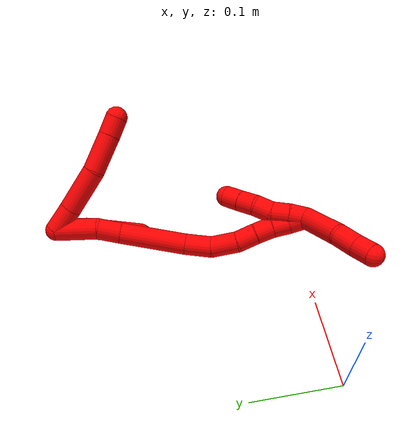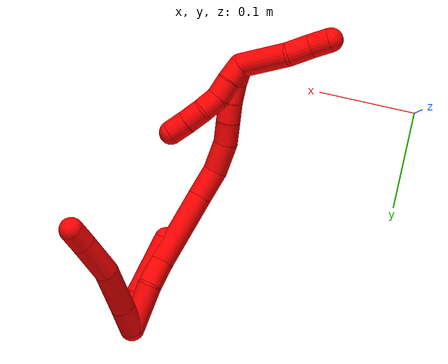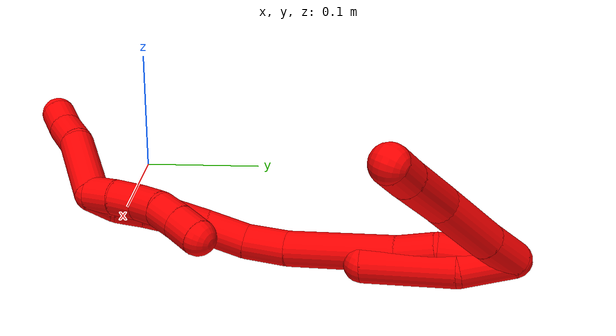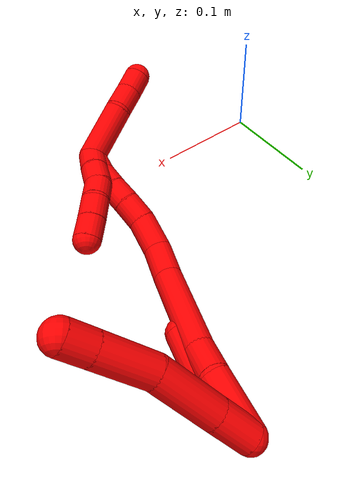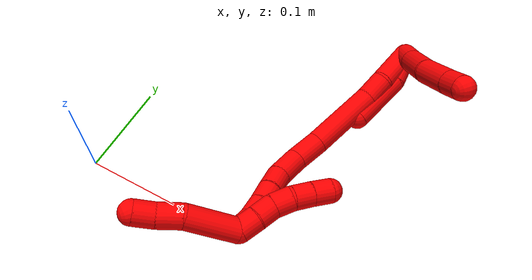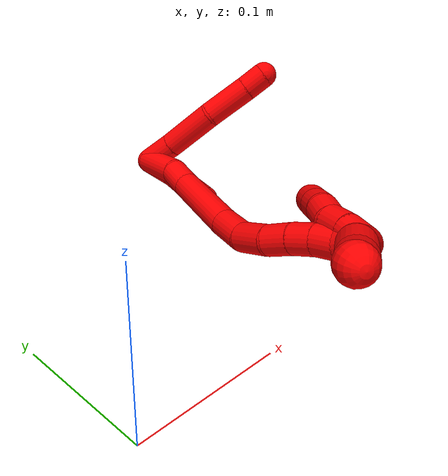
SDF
<sdf version="1.7">
 <world name="default">
  <model name="photoneo_s_sensor">
   <static>1</static>
   <pose>0 0 2 1.57079 1.57079 3.14159</pose>
   <link name="link">
    <inertial><mass>0.1</mass></inertial>
    <sensor name="sensor" type="depth">
     <update_rate>30</update_rate>
     <camera>
      <horizontal_fov>1.22</horizontal_fov>
      <image><width>1920</width><height>1200</height><format>B8G8R8</format></image>
      <clip><near>0.1</near><far>4</far></clip>
      <depth_camera><output>points</output></depth_camera>
     </camera>
     <plugin name="camera_plugin" filename="libgazebo_ros_depth_camera.so">
      <baseline>0.2</baseline>
      <alwaysOn>1</alwaysOn>
      <updateRate>0.0</updateRate>
      <cameraName>camera_ir</cameraName>
      <imageTopicName>/camera/color/image_raw</imageTopicName>
      <cameraInfoTopicName>/camera/color/camera_info</cameraInfoTopicName>
      <depthImageTopicName>/camera/depth/image_raw</depthImageTopicName>
      <depthImageCameraInfoTopicName>/camera/depth/camera_info</depthImageCameraInfoTopicName>
      <pointCloudTopicName>/camera/depth/points</pointCloudTopicName>
      <frameName>fr_optical</frameName>
      <pointCloudCutoff>0.1</pointCloudCutoff>
      <pointCloudCutoffMax>2.0</pointCloudCutoffMax>
      <distortionK1>0</distortionK1>
      <distortionK2>0</distortionK2>
      <distortionK3>0</distortionK3>
      <distortionT1>0</distortionT1>
      <distortionT2>0</distortionT2>
      <CxPrime>0</CxPrime>
      <Cx>0</Cx>
      <Cy>0</Cy>
      <focalLength>0</focalLength>
      <hackBaseline>0</hackBaseline>
     </plugin>
    </sensor>
   </link>
  </model>
  <model name="bin">
   <static>1</static>
   <link name="bottom">
    <collision name="collision-bottom">
     <pose>0 0 -0.01 0 -0 0</pose>
     <geometry><box><size>0.8 0.6 0.02</size></box></geometry>
     <surface>
      <friction><ode><mu>100</mu><mu2>100</mu2></ode></friction>
      <contact><collide_bitmask>65535</collide_bitmask></contact>
     </surface>
    </collision>
   </link>
   <link name="west_wall">
    <collision name="collision-west_wall">
     <pose>-0.41 0 0.1 0 -0 0</pose>
     <geometry><box><size>0.02 0.6 0.2</size></box></geometry>
     <surface>
      <friction><ode><mu>100</mu><mu2>100</mu2></ode></friction>
      <contact><collide_bitmask>65535</collide_bitmask></contact>
     </surface>
    </collision>
   </link>
   <link name="east_wall">
    <collision name="collision-east_wall">
     <pose>0.41 0 0.1 0 -0 0</pose>
     <geometry><box><size>0.02 0.6 0.2</size></box></geometry>
     <surface>
      <friction><ode><mu>100</mu><mu2>100</mu2></ode></friction>
      <contact><collide_bitmask>65535</collide_bitmask></contact>
     </surface>
    </collision>
   </link>
   <link name="south_wall">
    <collision name="collision-south_wall">
     <pose>0 -0.31 0.1 0 -0 0</pose>
     <geometry><box><size>0.8 0.02 0.2</size></box></geometry>
     <surface>
      <friction><ode><mu>100</mu><mu2>100</mu2></ode></friction>
      <contact><collide_bitmask>65535</collide_bitmask></contact>
     </surface>
    </collision>
   </link>
   <link name="north_wall">
    <collision name="collision-north_wall">
     <pose>0 0.31 0.1 0 -0 0</pose>
     <geometry><box><size>0.8 0.02 0.2</size></box></geometry>
     <surface>
      <friction><ode><mu>100</mu><mu2>100</mu2></ode></friction>
      <contact><collide_bitmask>65535</collide_bitmask></contact>
     </surface>
    </collision>
   </link>
  </model>
  <model name="2">
   <static>0</static>
   <link name="2">
    <collision name="collision-cylinder-e_1_2_8">
     <pose>-0.014411 -0.000544 -0.006386 3.05669 -1.15233 -3.01101</pose>
     <geometry><cylinder><radius>0.0125</radius><length>0.031545</length></cylinder></geometry>
     <surface>
      <friction><ode><mu>1.16</mu><mu2>1.16</mu2><slip1>0</slip1><slip2>0</slip2></ode></friction>
      <contact><ode><kp>1e+06</kp><kd>1</kd><max_vel>0</max_vel><min_depth>0.001</min_depth></ode></contact>
     </surface>
    </collision>
    <visual name="visual-cylinder-e_1_2_8">
     <pose>-0.014411 -0.000544 -0.006386 3.05669 -1.15233 -3.01101</pose>
     <geometry><cylinder><radius>0.0125</radius><length>0.031545</length></cylinder></geometry>
     <material><ambient>1 0 0 1</ambient></material>
    </visual>
    <collision name="collision-cylinder-e_2_8_9">
     <pose>-0.052852 -0.000941 -0.023039 -3.12734 -1.16698 3.12</pose>
     <geometry><cylinder><radius>0.0125</radius><length>0.052262</length></cylinder></geometry>
     <surface>
      <friction><ode><mu>1.16</mu><mu2>1.16</mu2><slip1>0</slip1><slip2>0</slip2></ode></friction>
      <contact><ode><kp>1e+06</kp><kd>1</kd><max_vel>0</max_vel><min_depth>0.001</min_depth></ode></contact>
     </surface>
    </collision>
    <visual name="visual-cylinder-e_2_8_9">
     <pose>-0.052852 -0.000941 -0.023039 -3.12734 -1.16698 3.12</pose>
     <geometry><cylinder><radius>0.0125</radius><length>0.052262</length></cylinder></geometry>
     <material><ambient>1 0 0 1</ambient></material>
    </visual>
    <collision name="collision-cylinder-e_3_9_10">
     <pose>-0.098565 -0.00237 -0.037583 2.78859 -1.36362 -2.70899</pose>
     <geometry><cylinder><radius>0.0125</radius><length>0.044315</length></cylinder></geometry>
     <surface>
      <friction><ode><mu>1.16</mu><mu2>1.16</mu2><slip1>0</slip1><slip2>0</slip2></ode></friction>
      <contact><ode><kp>1e+06</kp><kd>1</kd><max_vel>0</max_vel><min_depth>0.001</min_depth></ode></contact>
     </surface>
    </collision>
    <visual name="visual-cylinder-e_3_9_10">
     <pose>-0.098565 -0.00237 -0.037583 2.78859 -1.36362 -2.70899</pose>
     <geometry><cylinder><radius>0.0125</radius><length>0.044315</length></cylinder></geometry>
     <material><ambient>1 0 0 1</ambient></material>
    </visual>
    <collision name="collision-cylinder-e_4_10_6">
     <pose>-0.131007 -0.004439 -0.043776 2.88958 -1.38884 -2.83969</pose>
     <geometry><cylinder><radius>0.0125</radius><length>0.021878</length></cylinder></geometry>
     <surface>
      <friction><ode><mu>1.16</mu><mu2>1.16</mu2><slip1>0</slip1><slip2>0</slip2></ode></friction>
      <contact><ode><kp>1e+06</kp><kd>1</kd><max_vel>0</max_vel><min_depth>0.001</min_depth></ode></contact>
     </surface>
    </collision>
    <visual name="visual-cylinder-e_4_10_6">
     <pose>-0.131007 -0.004439 -0.043776 2.88958 -1.38884 -2.83969</pose>
     <geometry><cylinder><radius>0.0125</radius><length>0.021878</length></cylinder></geometry>
     <material><ambient>1 0 0 1</ambient></material>
    </visual>
    <collision name="collision-cylinder-e_1_2_11">
     <pose>-0.004642 -0.011344 -0.013505 2.44295 -0.257365 -0.682663</pose>
     <geometry><cylinder><radius>0.0125</radius><length>0.036477</length></cylinder></geometry>
     <surface>
      <friction><ode><mu>1.16</mu><mu2>1.16</mu2><slip1>0</slip1><slip2>0</slip2></ode></friction>
      <contact><ode><kp>1e+06</kp><kd>1</kd><max_vel>0</max_vel><min_depth>0.001</min_depth></ode></contact>
     </surface>
    </collision>
    <visual name="visual-cylinder-e_1_2_11">
     <pose>-0.004642 -0.011344 -0.013505 2.44295 -0.257365 -0.682663</pose>
     <geometry><cylinder><radius>0.0125</radius><length>0.036477</length></cylinder></geometry>
     <material><ambient>1 0 0 1</ambient></material>
    </visual>
    <collision name="collision-cylinder-e_2_11_5">
     <pose>-0.012799 -0.034969 -0.056091 2.74199 -0.110886 -0.535001</pose>
     <geometry><cylinder><radius>0.0125</radius><length>0.063523</length></cylinder></geometry>
     <surface>
      <friction><ode><mu>1.16</mu><mu2>1.16</mu2><slip1>0</slip1><slip2>0</slip2></ode></friction>
      <contact><ode><kp>1e+06</kp><kd>1</kd><max_vel>0</max_vel><min_depth>0.001</min_depth></ode></contact>
     </surface>
    </collision>
    <visual name="visual-cylinder-e_2_11_5">
     <pose>-0.012799 -0.034969 -0.056091 2.74199 -0.110886 -0.535001</pose>
     <geometry><cylinder><radius>0.0125</radius><length>0.063523</length></cylinder></geometry>
     <material><ambient>1 0 0 1</ambient></material>
    </visual>
    <collision name="collision-cylinder-e_1_2_12">
     <pose>-0.006137 -0.008557 -0.022023 2.77101 -0.254134 -1.19649</pose>
     <geometry><cylinder><radius>0.0125</radius><length>0.048823</length></cylinder></geometry>
     <surface>
      <friction><ode><mu>1.16</mu><mu2>1.16</mu2><slip1>0</slip1><slip2>0</slip2></ode></friction>
      <contact><ode><kp>1e+06</kp><kd>1</kd><max_vel>0</max_vel><min_depth>0.001</min_depth></ode></contact>
     </surface>
    </collision>
    <visual name="visual-cylinder-e_1_2_12">
     <pose>-0.006137 -0.008557 -0.022023 2.77101 -0.254134 -1.19649</pose>
     <geometry><cylinder><radius>0.0125</radius><length>0.048823</length></cylinder></geometry>
     <material><ambient>1 0 0 1</ambient></material>
    </visual>
    <collision name="collision-cylinder-e_2_12_13">
     <pose>-0.012532 -0.023687 -0.05581 2.63204 -0.019088 -0.073262</pose>
     <geometry><cylinder><radius>0.0125</radius><length>0.026956</length></cylinder></geometry>
     <surface>
      <friction><ode><mu>1.16</mu><mu2>1.16</mu2><slip1>0</slip1><slip2>0</slip2></ode></friction>
      <contact><ode><kp>1e+06</kp><kd>1</kd><max_vel>0</max_vel><min_depth>0.001</min_depth></ode></contact>
     </surface>
    </collision>
    <visual name="visual-cylinder-e_2_12_13">
     <pose>-0.012532 -0.023687 -0.05581 2.63204 -0.019088 -0.073262</pose>
     <geometry><cylinder><radius>0.0125</radius><length>0.026956</length></cylinder></geometry>
     <material><ambient>1 0 0 1</ambient></material>
    </visual>
    <collision name="collision-cylinder-e_3_13_14">
     <pose>-0.01464 -0.044846 -0.103419 2.75515 -0.047795 -0.24311</pose>
     <geometry><cylinder><radius>0.0125</radius><length>0.077487</length></cylinder></geometry>
     <surface>
      <friction><ode><mu>1.16</mu><mu2>1.16</mu2><slip1>0</slip1><slip2>0</slip2></ode></friction>
      <contact><ode><kp>1e+06</kp><kd>1</kd><max_vel>0</max_vel><min_depth>0.001</min_depth></ode></contact>
     </surface>
    </collision>
    <visual name="visual-cylinder-e_3_13_14">
     <pose>-0.01464 -0.044846 -0.103419 2.75515 -0.047795 -0.24311</pose>
     <geometry><cylinder><radius>0.0125</radius><length>0.077487</length></cylinder></geometry>
     <material><ambient>1 0 0 1</ambient></material>
    </visual>
    <collision name="collision-cylinder-e_4_14_15">
     <pose>-0.018309 -0.06381 -0.154306 2.85834 -0.115544 -0.77071</pose>
     <geometry><cylinder><radius>0.0125</radius><length>0.031543</length></cylinder></geometry>
     <surface>
      <friction><ode><mu>1.16</mu><mu2>1.16</mu2><slip1>0</slip1><slip2>0</slip2></ode></friction>
      <contact><ode><kp>1e+06</kp><kd>1</kd><max_vel>0</max_vel><min_depth>0.001</min_depth></ode></contact>
     </surface>
    </collision>
    <visual name="visual-cylinder-e_4_14_15">
     <pose>-0.018309 -0.06381 -0.154306 2.85834 -0.115544 -0.77071</pose>
     <geometry><cylinder><radius>0.0125</radius><length>0.031543</length></cylinder></geometry>
     <material><ambient>1 0 0 1</ambient></material>
    </visual>
    <collision name="collision-cylinder-e_5_15_16">
     <pose>-0.026651 -0.070634 -0.183631 2.972 -0.423038 -2.38775</pose>
     <geometry><cylinder><radius>0.0125</radius><length>0.031782</length></cylinder></geometry>
     <surface>
      <friction><ode><mu>1.16</mu><mu2>1.16</mu2><slip1>0</slip1><slip2>0</slip2></ode></friction>
      <contact><ode><kp>1e+06</kp><kd>1</kd><max_vel>0</max_vel><min_depth>0.001</min_depth></ode></contact>
     </surface>
    </collision>
    <visual name="visual-cylinder-e_5_15_16">
     <pose>-0.026651 -0.070634 -0.183631 2.972 -0.423038 -2.38775</pose>
     <geometry><cylinder><radius>0.0125</radius><length>0.031782</length></cylinder></geometry>
     <material><ambient>1 0 0 1</ambient></material>
    </visual>
    <collision name="collision-cylinder-e_6_16_17">
     <pose>-0.040154 -0.075342 -0.206818 2.8928 -0.649615 -2.43047</pose>
     <geometry><cylinder><radius>0.0125</radius><length>0.023077</length></cylinder></geometry>
     <surface>
      <friction><ode><mu>1.16</mu><mu2>1.16</mu2><slip1>0</slip1><slip2>0</slip2></ode></friction>
      <contact><ode><kp>1e+06</kp><kd>1</kd><max_vel>0</max_vel><min_depth>0.001</min_depth></ode></contact>
     </surface>
    </collision>
    <visual name="visual-cylinder-e_6_16_17">
     <pose>-0.040154 -0.075342 -0.206818 2.8928 -0.649615 -2.43047</pose>
     <geometry><cylinder><radius>0.0125</radius><length>0.023077</length></cylinder></geometry>
     <material><ambient>1 0 0 1</ambient></material>
    </visual>
    <collision name="collision-cylinder-e_7_17_18">
     <pose>-0.05281 -0.08039 -0.223599 2.80168 -0.596853 -2.12385</pose>
     <geometry><cylinder><radius>0.0125</radius><length>0.020197</length></cylinder></geometry>
     <surface>
      <friction><ode><mu>1.16</mu><mu2>1.16</mu2><slip1>0</slip1><slip2>0</slip2></ode></friction>
      <contact><ode><kp>1e+06</kp><kd>1</kd><max_vel>0</max_vel><min_depth>0.001</min_depth></ode></contact>
     </surface>
    </collision>
    <visual name="visual-cylinder-e_7_17_18">
     <pose>-0.05281 -0.08039 -0.223599 2.80168 -0.596853 -2.12385</pose>
     <geometry><cylinder><radius>0.0125</radius><length>0.020197</length></cylinder></geometry>
     <material><ambient>1 0 0 1</ambient></material>
    </visual>
    <collision name="collision-cylinder-e_8_18_19">
     <pose>-0.062914 -0.086432 -0.239873 2.7716 -0.456904 -1.78621</pose>
     <geometry><cylinder><radius>0.0125</radius><length>0.020078</length></cylinder></geometry>
     <surface>
      <friction><ode><mu>1.16</mu><mu2>1.16</mu2><slip1>0</slip1><slip2>0</slip2></ode></friction>
      <contact><ode><kp>1e+06</kp><kd>1</kd><max_vel>0</max_vel><min_depth>0.001</min_depth></ode></contact>
     </surface>
    </collision>
    <visual name="visual-cylinder-e_8_18_19">
     <pose>-0.062914 -0.086432 -0.239873 2.7716 -0.456904 -1.78621</pose>
     <geometry><cylinder><radius>0.0125</radius><length>0.020078</length></cylinder></geometry>
     <material><ambient>1 0 0 1</ambient></material>
    </visual>
    <collision name="collision-cylinder-e_9_19_1">
     <pose>-0.07231 -0.090454 -0.256951 3.05378 -0.518155 -2.81303</pose>
     <geometry><cylinder><radius>0.0125</radius><length>0.020057</length></cylinder></geometry>
     <surface>
      <friction><ode><mu>1.16</mu><mu2>1.16</mu2><slip1>0</slip1><slip2>0</slip2></ode></friction>
      <contact><ode><kp>1e+06</kp><kd>1</kd><max_vel>0</max_vel><min_depth>0.001</min_depth></ode></contact>
     </surface>
    </collision>
    <visual name="visual-cylinder-e_9_19_1">
     <pose>-0.07231 -0.090454 -0.256951 3.05378 -0.518155 -2.81303</pose>
     <geometry><cylinder><radius>0.0125</radius><length>0.020057</length></cylinder></geometry>
     <material><ambient>1 0 0 1</ambient></material>
    </visual>
    <collision name="collision-cylinder-e_1_1_20">
     <pose>-0.072076 -0.077001 -0.287924 -2.5739 0.194242 -0.644656</pose>
     <geometry><cylinder><radius>0.0125</radius><length>0.053896</length></cylinder></geometry>
     <surface>
      <friction><ode><mu>1.16</mu><mu2>1.16</mu2><slip1>0</slip1><slip2>0</slip2></ode></friction>
      <contact><ode><kp>1e+06</kp><kd>1</kd><max_vel>0</max_vel><min_depth>0.001</min_depth></ode></contact>
     </surface>
    </collision>
    <visual name="visual-cylinder-e_1_1_20">
     <pose>-0.072076 -0.077001 -0.287924 -2.5739 0.194242 -0.644656</pose>
     <geometry><cylinder><radius>0.0125</radius><length>0.053896</length></cylinder></geometry>
     <material><ambient>1 0 0 1</ambient></material>
    </visual>
    <collision name="collision-cylinder-e_2_20_21">
     <pose>-0.06313 -0.059345 -0.321572 -2.84749 0.305713 -1.61008</pose>
     <geometry><cylinder><radius>0.0125</radius><length>0.024881</length></cylinder></geometry>
     <surface>
      <friction><ode><mu>1.16</mu><mu2>1.16</mu2><slip1>0</slip1><slip2>0</slip2></ode></friction>
      <contact><ode><kp>1e+06</kp><kd>1</kd><max_vel>0</max_vel><min_depth>0.001</min_depth></ode></contact>
     </surface>
    </collision>
    <visual name="visual-cylinder-e_2_20_21">
     <pose>-0.06313 -0.059345 -0.321572 -2.84749 0.305713 -1.61008</pose>
     <geometry><cylinder><radius>0.0125</radius><length>0.024881</length></cylinder></geometry>
     <material><ambient>1 0 0 1</ambient></material>
    </visual>
    <collision name="collision-cylinder-e_3_21_4">
     <pose>-0.056928 -0.051567 -0.342293 -2.70776 0.23376 -0.979041</pose>
     <geometry><cylinder><radius>0.0125</radius><length>0.021223</length></cylinder></geometry>
     <surface>
      <friction><ode><mu>1.16</mu><mu2>1.16</mu2><slip1>0</slip1><slip2>0</slip2></ode></friction>
      <contact><ode><kp>1e+06</kp><kd>1</kd><max_vel>0</max_vel><min_depth>0.001</min_depth></ode></contact>
     </surface>
    </collision>
    <visual name="visual-cylinder-e_3_21_4">
     <pose>-0.056928 -0.051567 -0.342293 -2.70776 0.23376 -0.979041</pose>
     <geometry><cylinder><radius>0.0125</radius><length>0.021223</length></cylinder></geometry>
     <material><ambient>1 0 0 1</ambient></material>
    </visual>
    <collision name="collision-cylinder-e_1_1_22">
     <pose>-0.077309 -0.088554 -0.255991 -0.269713 -0.003125 0.000424</pose>
     <geometry><cylinder><radius>0.0125</radius><length>0.02</length></cylinder></geometry>
     <surface>
      <friction><ode><mu>1.16</mu><mu2>1.16</mu2><slip1>0</slip1><slip2>0</slip2></ode></friction>
      <contact><ode><kp>1e+06</kp><kd>1</kd><max_vel>0</max_vel><min_depth>0.001</min_depth></ode></contact>
     </surface>
    </collision>
    <visual name="visual-cylinder-e_1_1_22">
     <pose>-0.077309 -0.088554 -0.255991 -0.269713 -0.003125 0.000424</pose>
     <geometry><cylinder><radius>0.0125</radius><length>0.02</length></cylinder></geometry>
     <material><ambient>1 0 0 1</ambient></material>
    </visual>
    <collision name="collision-cylinder-e_2_22_23">
     <pose>-0.076269 -0.083603 -0.236677 -0.232043 0.107273 -0.012514</pose>
     <geometry><cylinder><radius>0.0125</radius><length>0.02</length></cylinder></geometry>
     <surface>
      <friction><ode><mu>1.16</mu><mu2>1.16</mu2><slip1>0</slip1><slip2>0</slip2></ode></friction>
      <contact><ode><kp>1e+06</kp><kd>1</kd><max_vel>0</max_vel><min_depth>0.001</min_depth></ode></contact>
     </surface>
    </collision>
    <visual name="visual-cylinder-e_2_22_23">
     <pose>-0.076269 -0.083603 -0.236677 -0.232043 0.107273 -0.012514</pose>
     <geometry><cylinder><radius>0.0125</radius><length>0.02</length></cylinder></geometry>
     <material><ambient>1 0 0 1</ambient></material>
    </visual>
    <collision name="collision-cylinder-e_3_23_24">
     <pose>-0.077007 -0.080272 -0.217221 -0.106373 -0.181877 0.009709</pose>
     <geometry><cylinder><radius>0.0125</radius><length>0.02</length></cylinder></geometry>
     <surface>
      <friction><ode><mu>1.16</mu><mu2>1.16</mu2><slip1>0</slip1><slip2>0</slip2></ode></friction>
      <contact><ode><kp>1e+06</kp><kd>1</kd><max_vel>0</max_vel><min_depth>0.001</min_depth></ode></contact>
     </surface>
    </collision>
    <visual name="visual-cylinder-e_3_23_24">
     <pose>-0.077007 -0.080272 -0.217221 -0.106373 -0.181877 0.009709</pose>
     <geometry><cylinder><radius>0.0125</radius><length>0.02</length></cylinder></geometry>
     <material><ambient>1 0 0 1</ambient></material>
    </visual>
    <collision name="collision-cylinder-e_4_24_25">
     <pose>-0.079574 -0.080409 -0.197541 0.118737 -0.075838 -0.00451</pose>
     <geometry><cylinder><radius>0.0125</radius><length>0.02</length></cylinder></geometry>
     <surface>
      <friction><ode><mu>1.16</mu><mu2>1.16</mu2><slip1>0</slip1><slip2>0</slip2></ode></friction>
      <contact><ode><kp>1e+06</kp><kd>1</kd><max_vel>0</max_vel><min_depth>0.001</min_depth></ode></contact>
     </surface>
    </collision>
    <visual name="visual-cylinder-e_4_24_25">
     <pose>-0.079574 -0.080409 -0.197541 0.118737 -0.075838 -0.00451</pose>
     <geometry><cylinder><radius>0.0125</radius><length>0.02</length></cylinder></geometry>
     <material><ambient>1 0 0 1</ambient></material>
    </visual>
    <collision name="collision-cylinder-e_5_25_3">
     <pose>-0.081265 -0.083151 -0.177807 0.157393 -0.093478 -0.007377</pose>
     <geometry><cylinder><radius>0.0125</radius><length>0.02</length></cylinder></geometry>
     <surface>
      <friction><ode><mu>1.16</mu><mu2>1.16</mu2><slip1>0</slip1><slip2>0</slip2></ode></friction>
      <contact><ode><kp>1e+06</kp><kd>1</kd><max_vel>0</max_vel><min_depth>0.001</min_depth></ode></contact>
     </surface>
    </collision>
    <visual name="visual-cylinder-e_5_25_3">
     <pose>-0.081265 -0.083151 -0.177807 0.157393 -0.093478 -0.007377</pose>
     <geometry><cylinder><radius>0.0125</radius><length>0.02</length></cylinder></geometry>
     <material><ambient>1 0 0 1</ambient></material>
    </visual>
    <collision name="collision-sphere-3">
     <pose>-0.082198 -0.084711 -0.167973 0 -0 0</pose>
     <geometry><sphere><radius>0.0125</radius></sphere></geometry>
     <surface>
      <friction><ode><mu>1.16</mu><mu2>1.16</mu2><slip1>0</slip1><slip2>0</slip2></ode></friction>
      <contact><ode><kp>1e+06</kp><kd>1</kd><max_vel>0</max_vel><min_depth>0.001</min_depth></ode></contact>
     </surface>
    </collision>
    <visual name="visual-sphere-3">
     <pose>-0.082198 -0.084711 -0.167973 0 -0 0</pose>
     <geometry><sphere><radius>0.0125</radius></sphere></geometry>
     <material><ambient>1 0 0 1</ambient></material>
    </visual>
    <collision name="collision-sphere-25">
     <pose>-0.080331 -0.08159 -0.18764 0 -0 0</pose>
     <geometry><sphere><radius>0.0125</radius></sphere></geometry>
     <surface>
      <friction><ode><mu>1.16</mu><mu2>1.16</mu2><slip1>0</slip1><slip2>0</slip2></ode></friction>
      <contact><ode><kp>1e+06</kp><kd>1</kd><max_vel>0</max_vel><min_depth>0.001</min_depth></ode></contact>
     </surface>
    </collision>
    <visual name="visual-sphere-25">
     <pose>-0.080331 -0.08159 -0.18764 0 -0 0</pose>
     <geometry><sphere><radius>0.0125</radius></sphere></geometry>
     <material><ambient>1 0 0 1</ambient></material>
    </visual>
    <collision name="collision-sphere-24">
     <pose>-0.078816 -0.079228 -0.207442 0 -0 0</pose>
     <geometry><sphere><radius>0.0125</radius></sphere></geometry>
     <surface>
      <friction><ode><mu>1.16</mu><mu2>1.16</mu2><slip1>0</slip1><slip2>0</slip2></ode></friction>
      <contact><ode><kp>1e+06</kp><kd>1</kd><max_vel>0</max_vel><min_depth>0.001</min_depth></ode></contact>
     </surface>
    </collision>
    <visual name="visual-sphere-24">
     <pose>-0.078816 -0.079228 -0.207442 0 -0 0</pose>
     <geometry><sphere><radius>0.0125</radius></sphere></geometry>
     <material><ambient>1 0 0 1</ambient></material>
    </visual>
    <collision name="collision-sphere-23">
     <pose>-0.075198 -0.081316 -0.227001 0 -0 0</pose>
     <geometry><sphere><radius>0.0125</radius></sphere></geometry>
     <surface>
      <friction><ode><mu>1.16</mu><mu2>1.16</mu2><slip1>0</slip1><slip2>0</slip2></ode></friction>
      <contact><ode><kp>1e+06</kp><kd>1</kd><max_vel>0</max_vel><min_depth>0.001</min_depth></ode></contact>
     </surface>
    </collision>
    <visual name="visual-sphere-23">
     <pose>-0.075198 -0.081316 -0.227001 0 -0 0</pose>
     <geometry><sphere><radius>0.0125</radius></sphere></geometry>
     <material><ambient>1 0 0 1</ambient></material>
    </visual>
    <collision name="collision-sphere-22">
     <pose>-0.07734 -0.085889 -0.246353 0 -0 0</pose>
     <geometry><sphere><radius>0.0125</radius></sphere></geometry>
     <surface>
      <friction><ode><mu>1.16</mu><mu2>1.16</mu2><slip1>0</slip1><slip2>0</slip2></ode></friction>
      <contact><ode><kp>1e+06</kp><kd>1</kd><max_vel>0</max_vel><min_depth>0.001</min_depth></ode></contact>
     </surface>
    </collision>
    <visual name="visual-sphere-22">
     <pose>-0.07734 -0.085889 -0.246353 0 -0 0</pose>
     <geometry><sphere><radius>0.0125</radius></sphere></geometry>
     <material><ambient>1 0 0 1</ambient></material>
    </visual>
    <collision name="collision-sphere-4">
     <pose>-0.05447 -0.047228 -0.351659 0 -0 0</pose>
     <geometry><sphere><radius>0.0125</radius></sphere></geometry>
     <surface>
      <friction><ode><mu>1.16</mu><mu2>1.16</mu2><slip1>0</slip1><slip2>0</slip2></ode></friction>
      <contact><ode><kp>1e+06</kp><kd>1</kd><max_vel>0</max_vel><min_depth>0.001</min_depth></ode></contact>
     </surface>
    </collision>
    <visual name="visual-sphere-4">
     <pose>-0.05447 -0.047228 -0.351659 0 -0 0</pose>
     <geometry><sphere><radius>0.0125</radius></sphere></geometry>
     <material><ambient>1 0 0 1</ambient></material>
    </visual>
    <collision name="collision-sphere-21">
     <pose>-0.059386 -0.055906 -0.332926 0 -0 0</pose>
     <geometry><sphere><radius>0.0125</radius></sphere></geometry>
     <surface>
      <friction><ode><mu>1.16</mu><mu2>1.16</mu2><slip1>0</slip1><slip2>0</slip2></ode></friction>
      <contact><ode><kp>1e+06</kp><kd>1</kd><max_vel>0</max_vel><min_depth>0.001</min_depth></ode></contact>
     </surface>
    </collision>
    <visual name="visual-sphere-21">
     <pose>-0.059386 -0.055906 -0.332926 0 -0 0</pose>
     <geometry><sphere><radius>0.0125</radius></sphere></geometry>
     <material><ambient>1 0 0 1</ambient></material>
    </visual>
    <collision name="collision-sphere-20">
     <pose>-0.066874 -0.062784 -0.310217 0 -0 0</pose>
     <geometry><sphere><radius>0.0125</radius></sphere></geometry>
     <surface>
      <friction><ode><mu>1.16</mu><mu2>1.16</mu2><slip1>0</slip1><slip2>0</slip2></ode></friction>
      <contact><ode><kp>1e+06</kp><kd>1</kd><max_vel>0</max_vel><min_depth>0.001</min_depth></ode></contact>
     </surface>
    </collision>
    <visual name="visual-sphere-20">
     <pose>-0.066874 -0.062784 -0.310217 0 -0 0</pose>
     <geometry><sphere><radius>0.0125</radius></sphere></geometry>
     <material><ambient>1 0 0 1</ambient></material>
    </visual>
    <collision name="collision-sphere-11">
     <pose>-0.009284 -0.022688 -0.027011 0 -0 0</pose>
     <geometry><sphere><radius>0.0125</radius></sphere></geometry>
     <surface>
      <friction><ode><mu>1.16</mu><mu2>1.16</mu2><slip1>0</slip1><slip2>0</slip2></ode></friction>
      <contact><ode><kp>1e+06</kp><kd>1</kd><max_vel>0</max_vel><min_depth>0.001</min_depth></ode></contact>
     </surface>
    </collision>
    <visual name="visual-sphere-11">
     <pose>-0.009284 -0.022688 -0.027011 0 -0 0</pose>
     <geometry><sphere><radius>0.0125</radius></sphere></geometry>
     <material><ambient>1 0 0 1</ambient></material>
    </visual>
    <collision name="collision-sphere-6">
     <pose>-0.141766 -0.004933 -0.045693 0 -0 0</pose>
     <geometry><sphere><radius>0.0125</radius></sphere></geometry>
     <surface>
      <friction><ode><mu>1.16</mu><mu2>1.16</mu2><slip1>0</slip1><slip2>0</slip2></ode></friction>
      <contact><ode><kp>1e+06</kp><kd>1</kd><max_vel>0</max_vel><min_depth>0.001</min_depth></ode></contact>
     </surface>
    </collision>
    <visual name="visual-sphere-6">
     <pose>-0.141766 -0.004933 -0.045693 0 -0 0</pose>
     <geometry><sphere><radius>0.0125</radius></sphere></geometry>
     <material><ambient>1 0 0 1</ambient></material>
    </visual>
    <collision name="collision-sphere-10">
     <pose>-0.120249 -0.003946 -0.041859 0 -0 0</pose>
     <geometry><sphere><radius>0.0125</radius></sphere></geometry>
     <surface>
      <friction><ode><mu>1.16</mu><mu2>1.16</mu2><slip1>0</slip1><slip2>0</slip2></ode></friction>
      <contact><ode><kp>1e+06</kp><kd>1</kd><max_vel>0</max_vel><min_depth>0.001</min_depth></ode></contact>
     </surface>
    </collision>
    <visual name="visual-sphere-10">
     <pose>-0.120249 -0.003946 -0.041859 0 -0 0</pose>
     <geometry><sphere><radius>0.0125</radius></sphere></geometry>
     <material><ambient>1 0 0 1</ambient></material>
    </visual>
    <collision name="collision-sphere-9">
     <pose>-0.076882 -0.000794 -0.033306 0 -0 0</pose>
     <geometry><sphere><radius>0.0125</radius></sphere></geometry>
     <surface>
      <friction><ode><mu>1.16</mu><mu2>1.16</mu2><slip1>0</slip1><slip2>0</slip2></ode></friction>
      <contact><ode><kp>1e+06</kp><kd>1</kd><max_vel>0</max_vel><min_depth>0.001</min_depth></ode></contact>
     </surface>
    </collision>
    <visual name="visual-sphere-9">
     <pose>-0.076882 -0.000794 -0.033306 0 -0 0</pose>
     <geometry><sphere><radius>0.0125</radius></sphere></geometry>
     <material><ambient>1 0 0 1</ambient></material>
    </visual>
    <collision name="collision-sphere-2">
     <geometry><sphere><radius>0.0125</radius></sphere></geometry>
     <surface>
      <friction><ode><mu>1.16</mu><mu2>1.16</mu2><slip1>0</slip1><slip2>0</slip2></ode></friction>
      <contact><ode><kp>1e+06</kp><kd>1</kd><max_vel>0</max_vel><min_depth>0.001</min_depth></ode></contact>
     </surface>
    </collision>
    <visual name="visual-sphere-2">
     <geometry><sphere><radius>0.0125</radius></sphere></geometry>
     <material><ambient>1 0 0 1</ambient></material>
    </visual>
    <collision name="collision-sphere-19">
     <pose>-0.067343 -0.08969 -0.248272 0 -0 0</pose>
     <geometry><sphere><radius>0.0125</radius></sphere></geometry>
     <surface>
      <friction><ode><mu>1.16</mu><mu2>1.16</mu2><slip1>0</slip1><slip2>0</slip2></ode></friction>
      <contact><ode><kp>1e+06</kp><kd>1</kd><max_vel>0</max_vel><min_depth>0.001</min_depth></ode></contact>
     </surface>
    </collision>
    <visual name="visual-sphere-19">
     <pose>-0.067343 -0.08969 -0.248272 0 -0 0</pose>
     <geometry><sphere><radius>0.0125</radius></sphere></geometry>
     <material><ambient>1 0 0 1</ambient></material>
    </visual>
    <collision name="collision-sphere-8">
     <pose>-0.028823 -0.001087 -0.012772 0 -0 0</pose>
     <geometry><sphere><radius>0.0125</radius></sphere></geometry>
     <surface>
      <friction><ode><mu>1.16</mu><mu2>1.16</mu2><slip1>0</slip1><slip2>0</slip2></ode></friction>
      <contact><ode><kp>1e+06</kp><kd>1</kd><max_vel>0</max_vel><min_depth>0.001</min_depth></ode></contact>
     </surface>
    </collision>
    <visual name="visual-sphere-8">
     <pose>-0.028823 -0.001087 -0.012772 0 -0 0</pose>
     <geometry><sphere><radius>0.0125</radius></sphere></geometry>
     <material><ambient>1 0 0 1</ambient></material>
    </visual>
    <collision name="collision-sphere-5">
     <pose>-0.016314 -0.04725 -0.08517 0 -0 0</pose>
     <geometry><sphere><radius>0.0125</radius></sphere></geometry>
     <surface>
      <friction><ode><mu>1.16</mu><mu2>1.16</mu2><slip1>0</slip1><slip2>0</slip2></ode></friction>
      <contact><ode><kp>1e+06</kp><kd>1</kd><max_vel>0</max_vel><min_depth>0.001</min_depth></ode></contact>
     </surface>
    </collision>
    <visual name="visual-sphere-5">
     <pose>-0.016314 -0.04725 -0.08517 0 -0 0</pose>
     <geometry><sphere><radius>0.0125</radius></sphere></geometry>
     <material><ambient>1 0 0 1</ambient></material>
    </visual>
    <collision name="collision-sphere-12">
     <pose>-0.012274 -0.017114 -0.044047 0 -0 0</pose>
     <geometry><sphere><radius>0.0125</radius></sphere></geometry>
     <surface>
      <friction><ode><mu>1.16</mu><mu2>1.16</mu2><slip1>0</slip1><slip2>0</slip2></ode></friction>
      <contact><ode><kp>1e+06</kp><kd>1</kd><max_vel>0</max_vel><min_depth>0.001</min_depth></ode></contact>
     </surface>
    </collision>
    <visual name="visual-sphere-12">
     <pose>-0.012274 -0.017114 -0.044047 0 -0 0</pose>
     <geometry><sphere><radius>0.0125</radius></sphere></geometry>
     <material><ambient>1 0 0 1</ambient></material>
    </visual>
    <collision name="collision-sphere-13">
     <pose>-0.012789 -0.03026 -0.067574 0 -0 0</pose>
     <geometry><sphere><radius>0.0125</radius></sphere></geometry>
     <surface>
      <friction><ode><mu>1.16</mu><mu2>1.16</mu2><slip1>0</slip1><slip2>0</slip2></ode></friction>
      <contact><ode><kp>1e+06</kp><kd>1</kd><max_vel>0</max_vel><min_depth>0.001</min_depth></ode></contact>
     </surface>
    </collision>
    <visual name="visual-sphere-13">
     <pose>-0.012789 -0.03026 -0.067574 0 -0 0</pose>
     <geometry><sphere><radius>0.0125</radius></sphere></geometry>
     <material><ambient>1 0 0 1</ambient></material>
    </visual>
    <collision name="collision-sphere-14">
     <pose>-0.016491 -0.059432 -0.139264 0 -0 0</pose>
     <geometry><sphere><radius>0.0125</radius></sphere></geometry>
     <surface>
      <friction><ode><mu>1.16</mu><mu2>1.16</mu2><slip1>0</slip1><slip2>0</slip2></ode></friction>
      <contact><ode><kp>1e+06</kp><kd>1</kd><max_vel>0</max_vel><min_depth>0.001</min_depth></ode></contact>
     </surface>
    </collision>
    <visual name="visual-sphere-14">
     <pose>-0.016491 -0.059432 -0.139264 0 -0 0</pose>
     <geometry><sphere><radius>0.0125</radius></sphere></geometry>
     <material><ambient>1 0 0 1</ambient></material>
    </visual>
    <collision name="collision-sphere-15">
     <pose>-0.020127 -0.068188 -0.169348 0 -0 0</pose>
     <geometry><sphere><radius>0.0125</radius></sphere></geometry>
     <surface>
      <friction><ode><mu>1.16</mu><mu2>1.16</mu2><slip1>0</slip1><slip2>0</slip2></ode></friction>
      <contact><ode><kp>1e+06</kp><kd>1</kd><max_vel>0</max_vel><min_depth>0.001</min_depth></ode></contact>
     </surface>
    </collision>
    <visual name="visual-sphere-15">
     <pose>-0.020127 -0.068188 -0.169348 0 -0 0</pose>
     <geometry><sphere><radius>0.0125</radius></sphere></geometry>
     <material><ambient>1 0 0 1</ambient></material>
    </visual>
    <collision name="collision-sphere-16">
     <pose>-0.033175 -0.07308 -0.197913 0 -0 0</pose>
     <geometry><sphere><radius>0.0125</radius></sphere></geometry>
     <surface>
      <friction><ode><mu>1.16</mu><mu2>1.16</mu2><slip1>0</slip1><slip2>0</slip2></ode></friction>
      <contact><ode><kp>1e+06</kp><kd>1</kd><max_vel>0</max_vel><min_depth>0.001</min_depth></ode></contact>
     </surface>
    </collision>
    <visual name="visual-sphere-16">
     <pose>-0.033175 -0.07308 -0.197913 0 -0 0</pose>
     <geometry><sphere><radius>0.0125</radius></sphere></geometry>
     <material><ambient>1 0 0 1</ambient></material>
    </visual>
    <collision name="collision-sphere-17">
     <pose>-0.047134 -0.077605 -0.215724 0 -0 0</pose>
     <geometry><sphere><radius>0.0125</radius></sphere></geometry>
     <surface>
      <friction><ode><mu>1.16</mu><mu2>1.16</mu2><slip1>0</slip1><slip2>0</slip2></ode></friction>
      <contact><ode><kp>1e+06</kp><kd>1</kd><max_vel>0</max_vel><min_depth>0.001</min_depth></ode></contact>
     </surface>
    </collision>
    <visual name="visual-sphere-17">
     <pose>-0.047134 -0.077605 -0.215724 0 -0 0</pose>
     <geometry><sphere><radius>0.0125</radius></sphere></geometry>
     <material><ambient>1 0 0 1</ambient></material>
    </visual>
    <collision name="collision-sphere-18">
     <pose>-0.058485 -0.083174 -0.231473 0 -0 0</pose>
     <geometry><sphere><radius>0.0125</radius></sphere></geometry>
     <surface>
      <friction><ode><mu>1.16</mu><mu2>1.16</mu2><slip1>0</slip1><slip2>0</slip2></ode></friction>
      <contact><ode><kp>1e+06</kp><kd>1</kd><max_vel>0</max_vel><min_depth>0.001</min_depth></ode></contact>
     </surface>
    </collision>
    <visual name="visual-sphere-18">
     <pose>-0.058485 -0.083174 -0.231473 0 -0 0</pose>
     <geometry><sphere><radius>0.0125</radius></sphere></geometry>
     <material><ambient>1 0 0 1</ambient></material>
    </visual>
    <collision name="collision-sphere-1">
     <pose>-0.077277 -0.091218 -0.26563 0 -0 0</pose>
     <geometry><sphere><radius>0.0125</radius></sphere></geometry>
     <surface>
      <friction><ode><mu>1.16</mu><mu2>1.16</mu2><slip1>0</slip1><slip2>0</slip2></ode></friction>
      <contact><ode><kp>1e+06</kp><kd>1</kd><max_vel>0</max_vel><min_depth>0.001</min_depth></ode></contact>
     </surface>
    </collision>
    <visual name="visual-sphere-1">
     <pose>-0.077277 -0.091218 -0.26563 0 -0 0</pose>
     <geometry><sphere><radius>0.0125</radius></sphere></geometry>
     <material><ambient>1 0 0 1</ambient></material>
    </visual>
    <inertial>
     <pose>-0.045105 -0.04486 -0.134837 0 -0 0</pose>
     <mass>0.75</mass>
     <inertia><ixx>4e-06</ixx><ixy>0</ixy><ixz>0</ixz><iyy>-9.9e-05</iyy><iyz>0</iyz><izz>3.5e-05</izz></inertia>
    </inertial>
   </link>
   <pose>0.236166 0.279183 0.024745 1.77409 0.673029 2.67924</pose>
  </model>
 </world>
</sdf>
